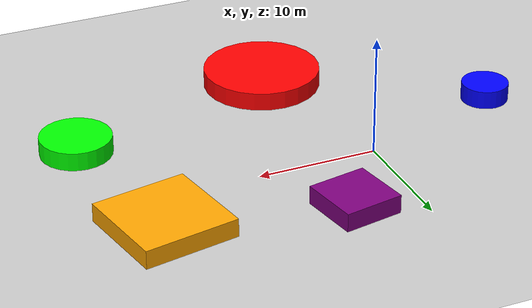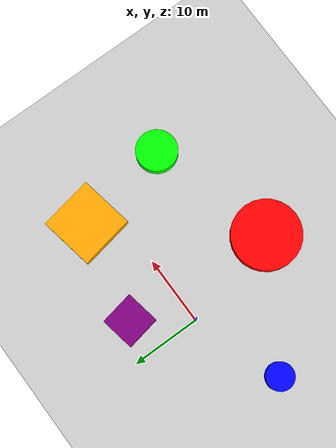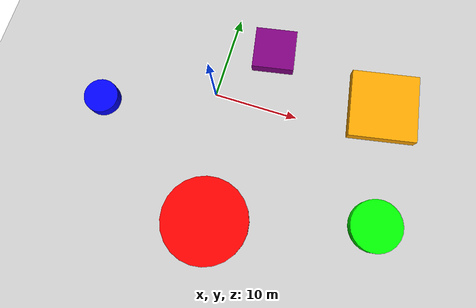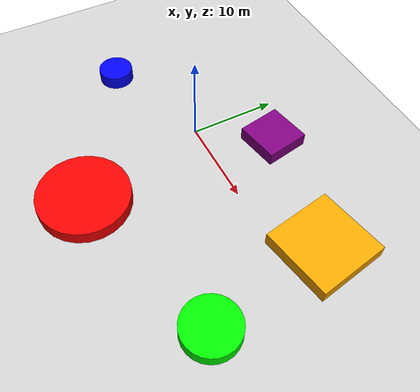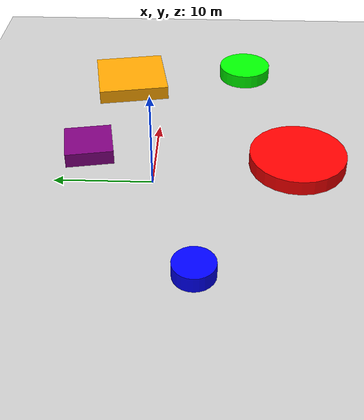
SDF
<sdf version='1.10'>
  <world name='empty'>
    <physics name='1ms' type='ignored'>
      <max_step_size>0.001</max_step_size>
      <real_time_factor>1</real_time_factor>
      <real_time_update_rate>1000</real_time_update_rate>
    </physics>
    <plugin name='gz::sim::systems::Physics' filename='gz-sim-physics-system'/>
    <plugin name='gz::sim::systems::UserCommands' filename='gz-sim-user-commands-system'/>
    <plugin name='gz::sim::systems::SceneBroadcaster' filename='gz-sim-scene-broadcaster-system'/>
    <plugin name='gz::sim::systems::Contact' filename='gz-sim-contact-system'/>
    <gravity>0 0 -9.8000000000000007</gravity>
    <magnetic_field>5.5644999999999998e-06 2.2875799999999999e-05 -4.2388400000000002e-05</magnetic_field>
    <atmosphere type='adiabatic'/>
    <spherical_coordinates>
      <surface_model>EARTH_WGS84</surface_model>
      <latitude_deg>29.560863000000001</latitude_deg>
      <longitude_deg>-95.084177499999996</longitude_deg>
      <elevation>4.5999999999999996</elevation>
      <heading_deg>0</heading_deg>
    </spherical_coordinates>
    <scene>
      <ambient>0.400000006 0.400000006 0.400000006 1</ambient>
      <background>0.699999988 0.699999988 0.699999988 1</background>
      <shadows>true</shadows>
    </scene>
    <model name='ground_plane'>
      <static>true</static>
      <link name='link'>
        <collision name='collision'>
          <geometry>
            <plane>
              <normal>0 0 1</normal>
              <size>79 98</size>
            </plane>
          </geometry>
          <surface>
            <friction>
              <ode/>
            </friction>
            <bounce/>
            <contact/>
          </surface>
        </collision>
        <visual name='visual'>
          <geometry>
            <plane>
              <normal>0 0 1</normal>
              <size>79 98</size>
            </plane>
          </geometry>
          <material>
            <ambient>0.800000012 0.800000012 0.800000012 1</ambient>
            <diffuse>0.800000012 0.800000012 0.800000012 1</diffuse>
            <specular>0.800000012 0.800000012 0.800000012 1</specular>
            <pbr>
              <metal>
                <albedo_map>worlds://materials/textures/b59_parking_lot.png</albedo_map>
              </metal>
            </pbr>
          </material>
        </visual>
        <pose>0 0 0 0 0 -1.3831853071795863</pose>
        <inertial>
          <pose>0 0 0 0 0 0</pose>
          <mass>1</mass>
          <inertia>
            <ixx>1</ixx>
            <ixy>0</ixy>
            <ixz>0</ixz>
            <iyy>1</iyy>
            <iyz>0</iyz>
            <izz>1</izz>
          </inertia>
        </inertial>
        <enable_wind>false</enable_wind>
      </link>
      <pose>0 0 0 0 0 0</pose>
      <self_collide>false</self_collide>
    </model>
    <model name='cylinder'>
      <pose>3.5540299415588379 -14.685971260070801 0.5 0 0 0</pose>
      <link name='cylinder_link'>
        <inertial>
          <inertia>
            <ixx>0.14580000000000001</ixx>
            <ixy>0</ixy>
            <ixz>0</ixz>
            <iyy>0.14580000000000001</iyy>
            <iyz>0</iyz>
            <izz>0.125</izz>
          </inertia>
          <mass>1</mass>
          <pose>0 0 0 0 0 0</pose>
        </inertial>
        <collision name='cylinder_collision'>
          <geometry>
            <cylinder>
              <radius>5</radius>
              <length>2</length>
            </cylinder>
          </geometry>
          <surface>
            <friction>
              <ode/>
            </friction>
            <bounce/>
            <contact/>
          </surface>
        </collision>
        <visual name='cylinder_visual'>
          <geometry>
            <cylinder>
              <radius>5</radius>
              <length>2</length>
            </cylinder>
          </geometry>
          <material>
            <ambient>1 0 0 1</ambient>
            <diffuse>1 0 0 1</diffuse>
            <specular>1 1 1 1</specular>
          </material>
        </visual>
        <pose>0 0 0 0 0 0</pose>
        <enable_wind>false</enable_wind>
      </link>
      <static>false</static>
      <self_collide>false</self_collide>
    </model>
    <model name='cylinder_0'>
      <pose>22.01569938659668 -9.6095619201660156 0.5 0 0 0</pose>
      <link name='cylinder_link'>
        <inertial>
          <inertia>
            <ixx>0.14580000000000001</ixx>
            <ixy>0</ixy>
            <ixz>0</ixz>
            <iyy>0.14580000000000001</iyy>
            <iyz>0</iyz>
            <izz>0.125</izz>
          </inertia>
          <mass>1</mass>
          <pose>0 0 0 0 0 0</pose>
        </inertial>
        <collision name='cylinder_collision'>
          <geometry>
            <cylinder>
              <radius>3</radius>
              <length>2</length>
            </cylinder>
          </geometry>
          <surface>
            <friction>
              <ode/>
            </friction>
            <bounce/>
            <contact/>
          </surface>
        </collision>
        <visual name='cylinder_visual'>
          <geometry>
            <cylinder>
              <radius>3</radius>
              <length>2</length>
            </cylinder>
          </geometry>
          <material>
            <ambient>0 1 0 1</ambient>
            <diffuse>0 1 0 1</diffuse>
            <specular>0 1 0 1</specular>
          </material>
        </visual>
        <pose>0 0 0 0 0 0</pose>
        <enable_wind>false</enable_wind>
      </link>
      <static>false</static>
      <self_collide>false</self_collide>
    </model>
    <model name='cylinder_1'>
      <pose>-12.729781058961102 -4.5403134115248207 0.5 0 0 0</pose>
      <link name='cylinder_link'>
        <inertial>
          <inertia>
            <ixx>0.14580000000000001</ixx>
            <ixy>0</ixy>
            <ixz>0</ixz>
            <iyy>0.14580000000000001</iyy>
            <iyz>0</iyz>
            <izz>0.125</izz>
          </inertia>
          <mass>1</mass>
          <pose>0 0 0 0 0 0</pose>
        </inertial>
        <collision name='cylinder_collision'>
          <geometry>
            <cylinder>
              <radius>2</radius>
              <length>2</length>
            </cylinder>
          </geometry>
          <surface>
            <friction>
              <ode/>
            </friction>
            <bounce/>
            <contact/>
          </surface>
        </collision>
        <visual name='cylinder_visual'>
          <geometry>
            <cylinder>
              <radius>2</radius>
              <length>2</length>
            </cylinder>
          </geometry>
          <material>
            <ambient>0 0 1 1</ambient>
            <diffuse>0 0 1 1</diffuse>
            <specular>0 0 1 1</specular>
          </material>
        </visual>
        <pose>0 0 0 0 0 0</pose>
        <enable_wind>false</enable_wind>
      </link>
      <static>false</static>
      <self_collide>false</self_collide>
    </model>
    <model name='box'>
      <pose>19.5275 4.1385900000000007 0.5 0 0 -1.3903399999999992</pose>
      <link name='box_link'>
        <inertial>
          <inertia>
            <ixx>0.16666</ixx>
            <ixy>0</ixy>
            <ixz>0</ixz>
            <iyy>0.16666</iyy>
            <iyz>0</iyz>
            <izz>0.16666</izz>
          </inertia>
          <mass>1</mass>
          <pose>0 0 0 0 0 0</pose>
        </inertial>
        <collision name='box_collision'>
          <geometry>
            <box>
              <size>8 8 2</size>
            </box>
          </geometry>
          <surface>
            <friction>
              <ode/>
            </friction>
            <bounce/>
            <contact/>
          </surface>
        </collision>
        <visual name='box_visual'>
          <geometry>
            <box>
              <size>8 8 2</size>
            </box>
          </geometry>
          <material>
            <ambient>1.0 0.65 0.0 1</ambient>
            <diffuse>1.0 0.65 0.0 1</diffuse>
            <specular>1 1 1 1</specular>
          </material>
        </visual>
        <pose>0 0 0 0 0 0</pose>
        <enable_wind>false</enable_wind>
      </link>
      <static>false</static>
      <self_collide>false</self_collide>
    </model>
    <model name='box_0'>
      <pose>5.1712600000000002 7.1947900000000011 0.5 0 0 -1.3903399999999992</pose>
      <link name='box_link'>
        <inertial>
          <inertia>
            <ixx>0.16666</ixx>
            <ixy>0</ixy>
            <ixz>0</ixz>
            <iyy>0.16666</iyy>
            <iyz>0</iyz>
            <izz>0.16666</izz>
          </inertia>
          <mass>1</mass>
          <pose>0 0 0 0 0 0</pose>
        </inertial>
        <collision name='box_collision'>
          <geometry>
            <box>
              <size>5 5 2</size>
            </box>
          </geometry>
          <surface>
            <friction>
              <ode/>
            </friction>
            <bounce/>
            <contact/>
          </surface>
        </collision>
        <visual name='box_visual'>
          <geometry>
            <box>
              <size>5 5 2</size>
            </box>
          </geometry>
          <material>
            <ambient>0.5 0.0 0.5 1</ambient>
            <diffuse>0.5 0.0 0.5 1</diffuse>
            <specular>0.5 0.0 0.5 1</specular>
          </material>
        </visual>
        <pose>0 0 0 0 0 0</pose>
        <enable_wind>false</enable_wind>
      </link>
      <static>false</static>
      <self_collide>false</self_collide>
    </model>
    <light name='sun' type='directional'>
      <pose>0 0 10 0 0 0</pose>
      <cast_shadows>true</cast_shadows>
      <intensity>1</intensity>
      <direction>-0.5 0.10000000000000001 -0.90000000000000002</direction>
      <diffuse>0.800000012 0.800000012 0.800000012 1</diffuse>
      <specular>0.200000003 0.200000003 0.200000003 1</specular>
      <attenuation>
        <range>1000</range>
        <linear>0.01</linear>
        <constant>0.90000000000000002</constant>
        <quadratic>0.001</quadratic>
      </attenuation>
      <spot>
        <inner_angle>0</inner_angle>
        <outer_angle>0</outer_angle>
        <falloff>0</falloff>
      </spot>
    </light>
  </world>
</sdf>
